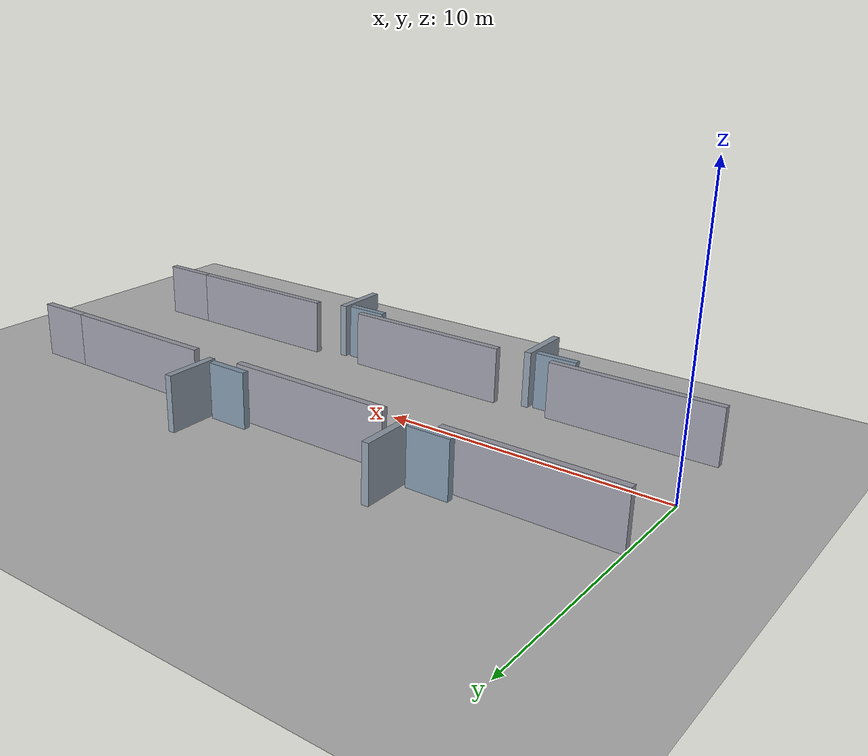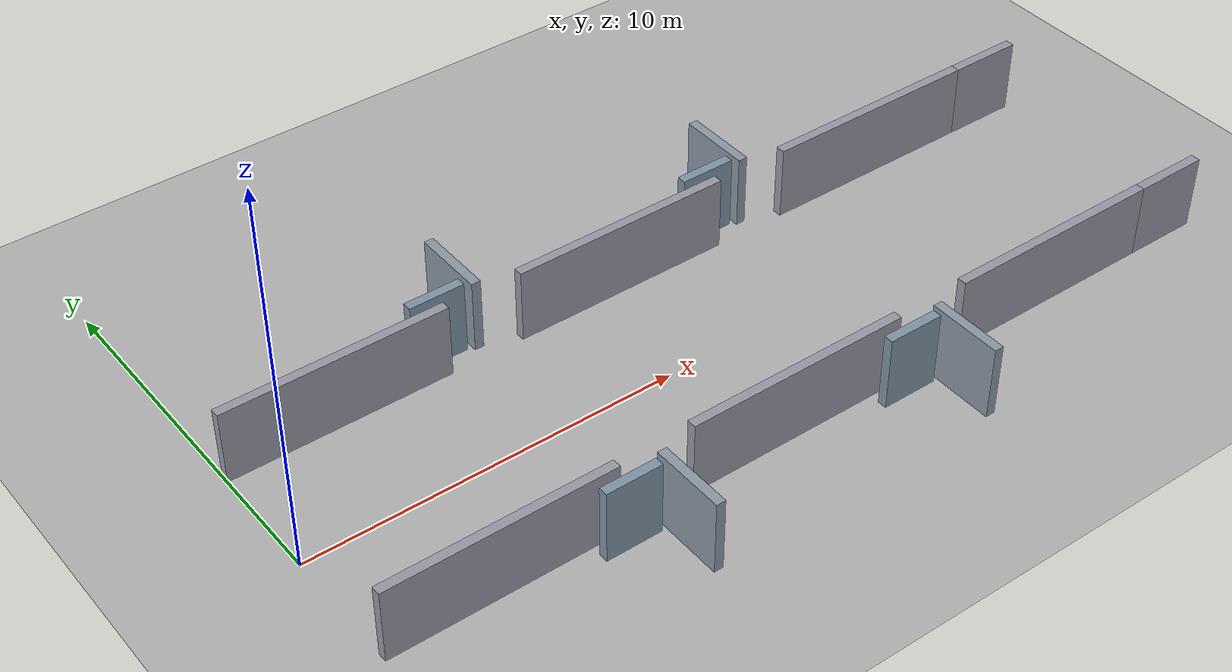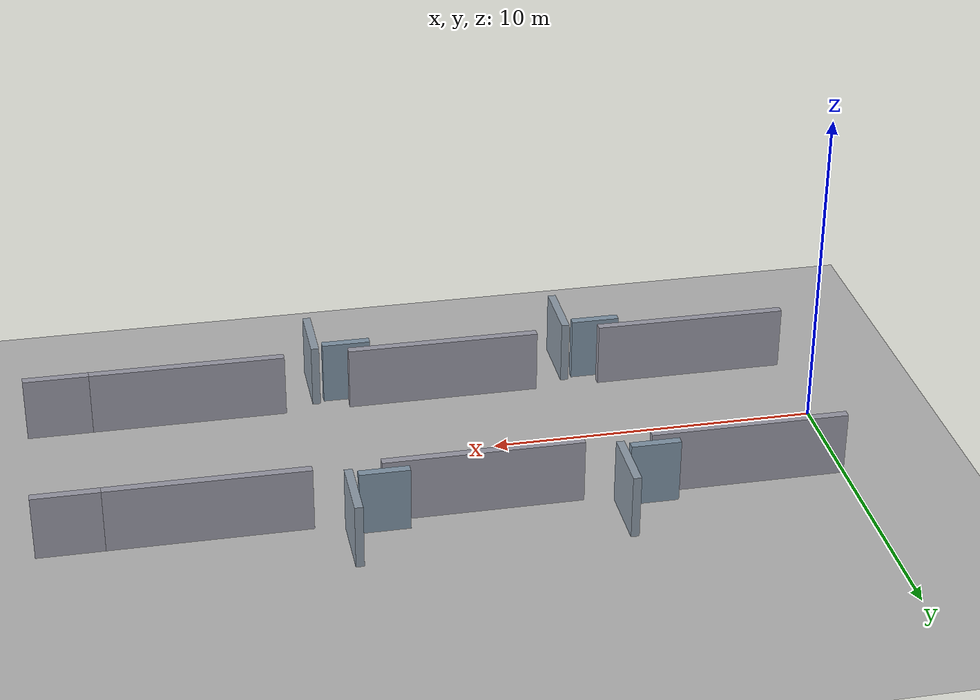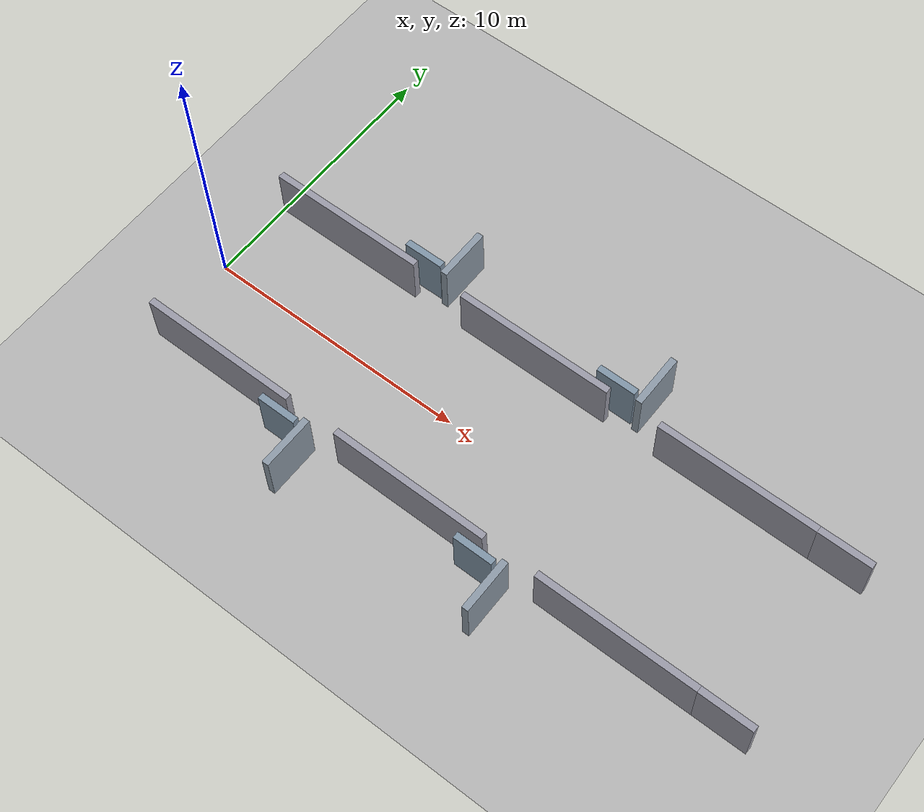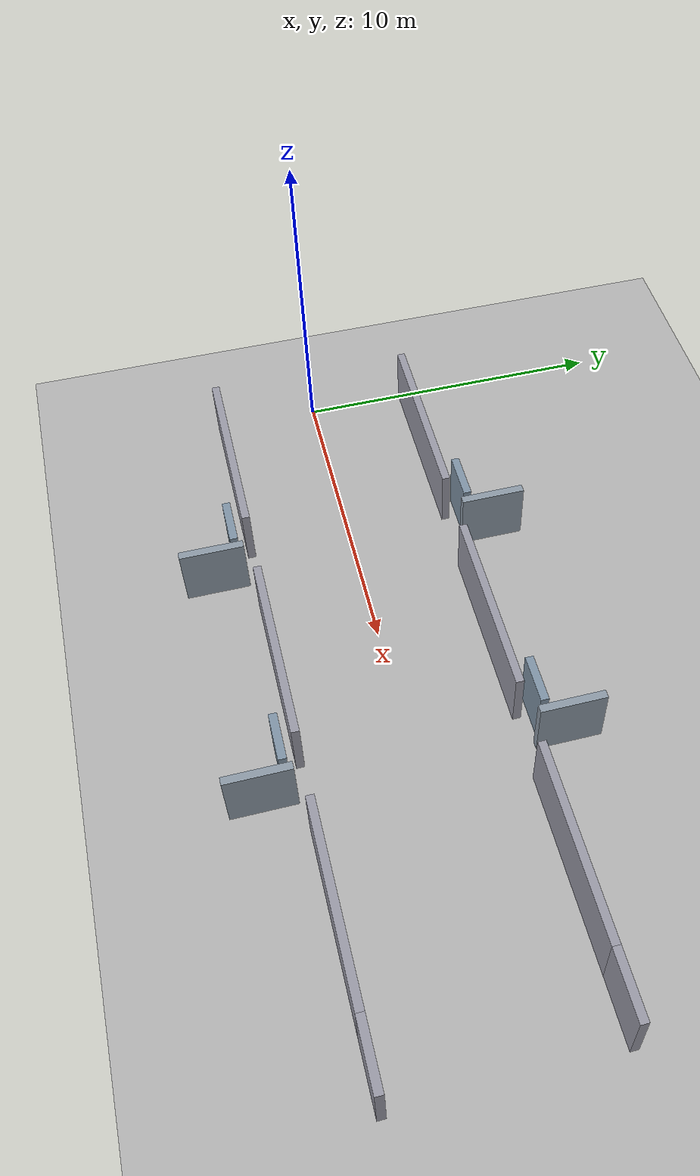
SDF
<?xml version="1.0"?>
<sdf version="1.8">
  <world name="dynamic_corridor_world">
    <plugin filename="gz-sim-physics-system" name="gz::sim::systems::Physics"/>
    <plugin filename="gz-sim-sensors-system" name="gz::sim::systems::Sensors">
      <render_engine>ogre2</render_engine>
    </plugin>
    <plugin filename="gz-sim-scene-broadcaster-system" name="gz::sim::systems::SceneBroadcaster"/>
    <plugin filename="gz-sim-user-commands-system" name="gz::sim::systems::UserCommands"/>
    <plugin filename="libpedestrian_manager_system.so" name="saye::PedestrianManagerSystem">
      <config_file>config/pedestrian_actors_plugin.yaml</config_file>
    </plugin>

    <light name="sun" type="directional">
      <pose>0 0 10 0 0 0</pose>
      <diffuse>0.8 0.8 0.8 1</diffuse>
      <specular>0.2 0.2 0.2 1</specular>
      <attenuation>
        <range>1000</range>
        <constant>0.9</constant>
        <linear>0.01</linear>
        <quadratic>0.001</quadratic>
      </attenuation>
      <direction>-0.5 0.1 -0.9</direction>
    </light>

    <!-- Base plane -->
    <model name="ground_plane">
      <static>true</static>
      <link name="link">
        <collision name="collision">
          <geometry>
            <plane>
              <normal>0 0 1</normal>
              <size>100 100</size>
            </plane>
          </geometry>
        </collision>
        <visual name="visual">
          <geometry>
            <plane>
              <normal>0 0 1</normal>
              <size>100 100</size>
            </plane>
          </geometry>
          <material>
            <ambient>0.7 0.7 0.7 1</ambient>
            <diffuse>0.7 0.7 0.7 1</diffuse>
          </material>
        </visual>
      </link>
    </model>

    <!-- Main corridor side walls (left) -->
    <model name="left_wall_front">
      <static>true</static>
      <pose>3 3.25 1 0 0 0</pose>
      <link name="link">
        <collision name="collision">
          <geometry>
            <box>
              <size>6 0.25 2</size>
            </box>
          </geometry>
        </collision>
        <visual name="visual">
          <geometry>
            <box>
              <size>6 0.25 2</size>
            </box>
          </geometry>
          <material>
            <ambient>0.6 0.6 0.65 1</ambient>
            <diffuse>0.6 0.6 0.65 1</diffuse>
          </material>
        </visual>
      </link>
    </model>

    <model name="left_wall_mid">
      <static>true</static>
      <pose>11 3.25 1 0 0 0</pose>
      <link name="link">
        <collision name="collision">
          <geometry>
            <box>
              <size>6 0.25 2</size>
            </box>
          </geometry>
        </collision>
        <visual name="visual">
          <geometry>
            <box>
              <size>6 0.25 2</size>
            </box>
          </geometry>
          <material>
            <ambient>0.6 0.6 0.65 1</ambient>
            <diffuse>0.6 0.6 0.65 1</diffuse>
          </material>
        </visual>
      </link>
    </model>

    <model name="left_wall_rear">
      <static>true</static>
      <pose>19 3.25 1 0 0 0</pose>
      <link name="link">
        <collision name="collision">
          <geometry>
            <box>
              <size>6 0.25 2</size>
            </box>
          </geometry>
        </collision>
        <visual name="visual">
          <geometry>
            <box>
              <size>6 0.25 2</size>
            </box>
          </geometry>
          <material>
            <ambient>0.6 0.6 0.65 1</ambient>
            <diffuse>0.6 0.6 0.65 1</diffuse>
          </material>
        </visual>
      </link>
    </model>

    <model name="left_wall_end">
      <static>true</static>
      <pose>23 3.25 1 0 0 0</pose>
      <link name="link">
        <collision name="collision">
          <geometry>
            <box>
              <size>2 0.25 2</size>
            </box>
          </geometry>
        </collision>
        <visual name="visual">
          <geometry>
            <box>
              <size>2 0.25 2</size>
            </box>
          </geometry>
          <material>
            <ambient>0.6 0.6 0.65 1</ambient>
            <diffuse>0.6 0.6 0.65 1</diffuse>
          </material>
        </visual>
      </link>
    </model>

    <!-- Main corridor side walls (right) -->
    <model name="right_wall_front">
      <static>true</static>
      <pose>3 -3.25 1 0 0 0</pose>
      <link name="link">
        <collision name="collision">
          <geometry>
            <box>
              <size>6 0.25 2</size>
            </box>
          </geometry>
        </collision>
        <visual name="visual">
          <geometry>
            <box>
              <size>6 0.25 2</size>
            </box>
          </geometry>
          <material>
            <ambient>0.6 0.6 0.65 1</ambient>
            <diffuse>0.6 0.6 0.65 1</diffuse>
          </material>
        </visual>
      </link>
    </model>

    <model name="right_wall_mid">
      <static>true</static>
      <pose>11 -3.25 1 0 0 0</pose>
      <link name="link">
        <collision name="collision">
          <geometry>
            <box>
              <size>6 0.25 2</size>
            </box>
          </geometry>
        </collision>
        <visual name="visual">
          <geometry>
            <box>
              <size>6 0.25 2</size>
            </box>
          </geometry>
          <material>
            <ambient>0.6 0.6 0.65 1</ambient>
            <diffuse>0.6 0.6 0.65 1</diffuse>
          </material>
        </visual>
      </link>
    </model>

    <model name="right_wall_rear">
      <static>true</static>
      <pose>19 -3.25 1 0 0 0</pose>
      <link name="link">
        <collision name="collision">
          <geometry>
            <box>
              <size>6 0.25 2</size>
            </box>
          </geometry>
        </collision>
        <visual name="visual">
          <geometry>
            <box>
              <size>6 0.25 2</size>
            </box>
          </geometry>
          <material>
            <ambient>0.6 0.6 0.65 1</ambient>
            <diffuse>0.6 0.6 0.65 1</diffuse>
          </material>
        </visual>
      </link>
    </model>

    <model name="right_wall_end">
      <static>true</static>
      <pose>23 -3.25 1 0 0 0</pose>
      <link name="link">
        <collision name="collision">
          <geometry>
            <box>
              <size>2 0.25 2</size>
            </box>
          </geometry>
        </collision>
        <visual name="visual">
          <geometry>
            <box>
              <size>2 0.25 2</size>
            </box>
          </geometry>
          <material>
            <ambient>0.6 0.6 0.65 1</ambient>
            <diffuse>0.6 0.6 0.65 1</diffuse>
          </material>
        </visual>
      </link>
    </model>

    <!-- Side alcove back walls (left) -->
    <model name="left_alcove1_back">
      <static>true</static>
      <pose>7 4.5 1 0 0 0</pose>
      <link name="link">
        <collision name="collision">
          <geometry>
            <box>
              <size>0.25 2 2</size>
            </box>
          </geometry>
        </collision>
        <visual name="visual">
          <geometry>
            <box>
              <size>0.25 2 2</size>
            </box>
          </geometry>
          <material>
            <ambient>0.55 0.6 0.65 1</ambient>
            <diffuse>0.55 0.6 0.65 1</diffuse>
          </material>
        </visual>
      </link>
    </model>

    <model name="left_alcove2_back">
      <static>true</static>
      <pose>15 4.5 1 0 0 0</pose>
      <link name="link">
        <collision name="collision">
          <geometry>
            <box>
              <size>0.25 2 2</size>
            </box>
          </geometry>
        </collision>
        <visual name="visual">
          <geometry>
            <box>
              <size>0.25 2 2</size>
            </box>
          </geometry>
          <material>
            <ambient>0.55 0.6 0.65 1</ambient>
            <diffuse>0.55 0.6 0.65 1</diffuse>
          </material>
        </visual>
      </link>
    </model>

    <!-- Side alcove back walls (right) -->
    <model name="right_alcove1_back">
      <static>true</static>
      <pose>7 -4.5 1 0 0 0</pose>
      <link name="link">
        <collision name="collision">
          <geometry>
            <box>
              <size>0.25 2 2</size>
            </box>
          </geometry>
        </collision>
        <visual name="visual">
          <geometry>
            <box>
              <size>0.25 2 2</size>
            </box>
          </geometry>
          <material>
            <ambient>0.55 0.6 0.65 1</ambient>
            <diffuse>0.55 0.6 0.65 1</diffuse>
          </material>
        </visual>
      </link>
    </model>

    <model name="right_alcove2_back">
      <static>true</static>
      <pose>15 -4.5 1 0 0 0</pose>
      <link name="link">
        <collision name="collision">
          <geometry>
            <box>
              <size>0.25 2 2</size>
            </box>
          </geometry>
        </collision>
        <visual name="visual">
          <geometry>
            <box>
              <size>0.25 2 2</size>
            </box>
          </geometry>
          <material>
            <ambient>0.55 0.6 0.65 1</ambient>
            <diffuse>0.55 0.6 0.65 1</diffuse>
          </material>
        </visual>
      </link>
    </model>

    <!-- Alcove boundary short walls -->
    <model name="left_alcove1_front">
      <static>true</static>
      <pose>6 3.75 1 0 0 1.5708</pose>
      <link name="link">
        <collision name="collision">
          <geometry>
            <box>
              <size>0.25 1.5 2</size>
            </box>
          </geometry>
        </collision>
        <visual name="visual">
          <geometry>
            <box>
              <size>0.25 1.5 2</size>
            </box>
          </geometry>
          <material>
            <ambient>0.5 0.58 0.65 1</ambient>
            <diffuse>0.5 0.58 0.65 1</diffuse>
          </material>
        </visual>
      </link>
    </model>

    <model name="left_alcove2_front">
      <static>true</static>
      <pose>14 3.75 1 0 0 1.5708</pose>
      <link name="link">
        <collision name="collision">
          <geometry>
            <box>
              <size>0.25 1.5 2</size>
            </box>
          </geometry>
        </collision>
        <visual name="visual">
          <geometry>
            <box>
              <size>0.25 1.5 2</size>
            </box>
          </geometry>
          <material>
            <ambient>0.5 0.58 0.65 1</ambient>
            <diffuse>0.5 0.58 0.65 1</diffuse>
          </material>
        </visual>
      </link>
    </model>

    <model name="right_alcove1_front">
      <static>true</static>
      <pose>6 -3.75 1 0 0 1.5708</pose>
      <link name="link">
        <collision name="collision">
          <geometry>
            <box>
              <size>0.25 1.5 2</size>
            </box>
          </geometry>
        </collision>
        <visual name="visual">
          <geometry>
            <box>
              <size>0.25 1.5 2</size>
            </box>
          </geometry>
          <material>
            <ambient>0.5 0.58 0.65 1</ambient>
            <diffuse>0.5 0.58 0.65 1</diffuse>
          </material>
        </visual>
      </link>
    </model>

    <model name="right_alcove2_front">
      <static>true</static>
      <pose>14 -3.75 1 0 0 1.5708</pose>
      <link name="link">
        <collision name="collision">
          <geometry>
            <box>
              <size>0.25 1.5 2</size>
            </box>
          </geometry>
        </collision>
        <visual name="visual">
          <geometry>
            <box>
              <size>0.25 1.5 2</size>
            </box>
          </geometry>
          <material>
            <ambient>0.5 0.58 0.65 1</ambient>
            <diffuse>0.5 0.58 0.65 1</diffuse>
          </material>
        </visual>
      </link>
    </model>

    <!-- Central corridor cleared for straight path -->
  </world>
</sdf>
